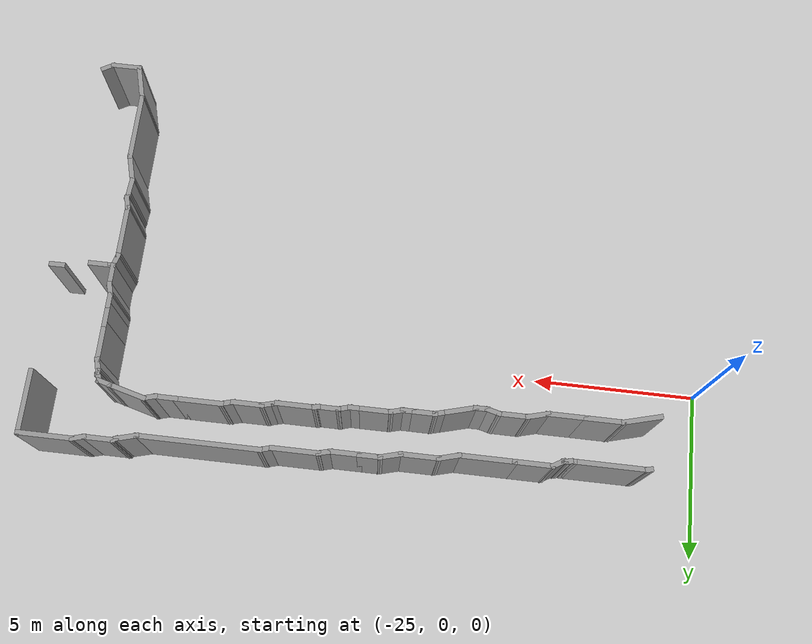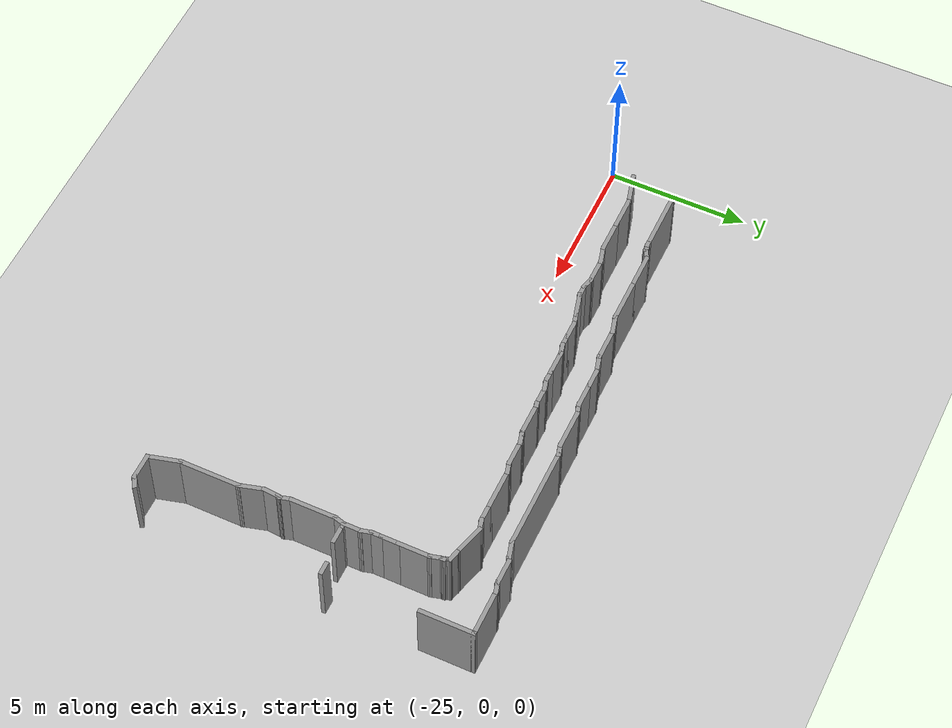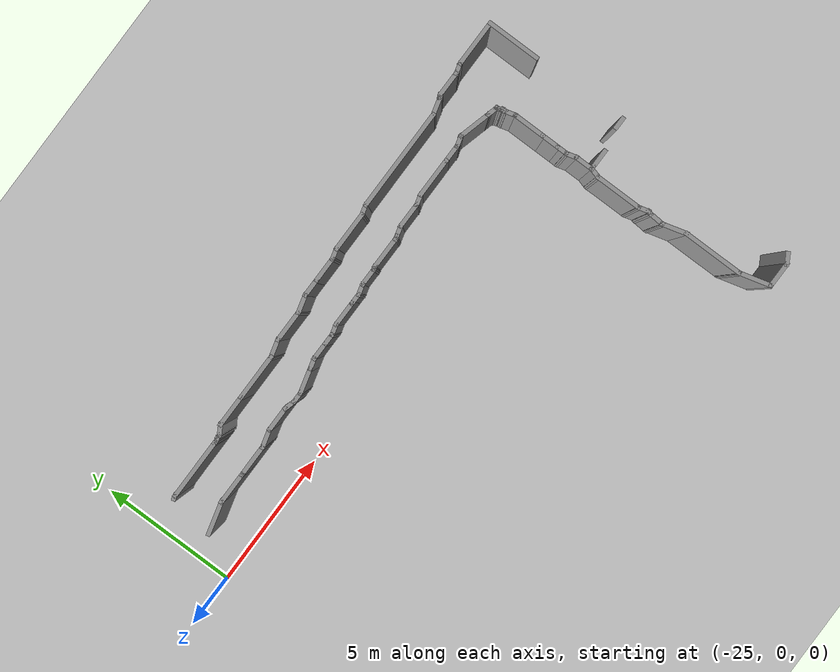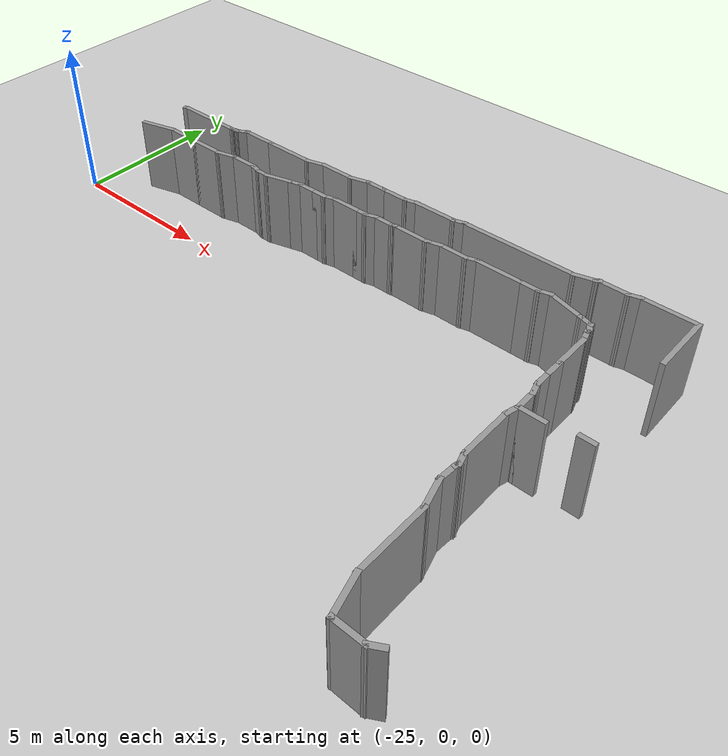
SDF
<sdf version="1.7">
 <world name="default">
  <model name="ground_plane">
   <static>1</static>
   <link name="link">
    <collision name="collision">
     <geometry><plane><normal>0 0 1</normal><size>100 100</size></plane></geometry>
     <surface>
      <contact><collide_bitmask>65535</collide_bitmask></contact>
      <friction><ode><mu>100</mu><mu2>50</mu2></ode></friction>
     </surface>
    </collision>
    <visual name="visual">
     <cast_shadows>0</cast_shadows>
     <geometry><plane><normal>0 0 1</normal><size>100 100</size></plane></geometry>
     <material>
      <script><uri>file://media/materials/scripts/gazebo.material</uri><name>Gazebo/Grey</name></script>
     </material>
    </visual>
   </link>
  </model>
  <model name="robovisor_env">
   <pose>-13 -0.201839 0 0 0 3.14</pose>
   <link name="Wall_106">
    <collision name="Wall_106_Collision">
     <geometry><box><size>2 0.15 2.5</size></box></geometry>
     <pose>0 0 1.25 0 -0 0</pose>
    </collision>
    <visual name="Wall_106_Visual">
     <pose>0 0 1.25 0 -0 0</pose>
     <geometry><box><size>2 0.15 2.5</size></box></geometry>
     <material>
      <script><uri>file://media/materials/scripts/gazebo.material</uri><name>Gazebo/Grey</name></script>
      <ambient>1 1 1 1</ambient>
     </material>
     <meta><layer>0</layer></meta>
    </visual>
    <pose>-8.11898 -3.16559 0 0 -0 -1.5708</pose>
   </link>
   <link name="Wall_107">
    <collision name="Wall_107_Collision">
     <geometry><box><size>1.75 0.15 2.5</size></box></geometry>
     <pose>0 0 1.25 0 -0 0</pose>
    </collision>
    <visual name="Wall_107_Visual">
     <pose>0 0 1.25 0 -0 0</pose>
     <geometry><box><size>1.75 0.15 2.5</size></box></geometry>
     <material>
      <script><uri>file://media/materials/scripts/gazebo.material</uri><name>Gazebo/Grey</name></script>
      <ambient>1 1 1 1</ambient>
     </material>
     <meta><layer>0</layer></meta>
    </visual>
    <pose>-7.31898 -4.09059 0 0 -0 0</pose>
   </link>
   <link name="Wall_108">
    <collision name="Wall_108_Collision">
     <geometry><box><size>0.5 0.15 2.5</size></box></geometry>
     <pose>0 0 1.25 0 -0 0</pose>
    </collision>
    <visual name="Wall_108_Visual">
     <pose>0 0 1.25 0 -0 0</pose>
     <geometry><box><size>0.5 0.15 2.5</size></box></geometry>
     <material>
      <script><uri>file://media/materials/scripts/gazebo.material</uri><name>Gazebo/Grey</name></script>
      <ambient>1 1 1 1</ambient>
     </material>
     <meta><layer>0</layer></meta>
    </visual>
    <pose>-6.34994 -4.04529 0 0 -0 0.261799</pose>
   </link>
   <link name="Wall_109">
    <collision name="Wall_109_Collision">
     <geometry><box><size>1 0.15 2.5</size></box></geometry>
     <pose>0 0 1.25 0 -0 0</pose>
    </collision>
    <visual name="Wall_109_Visual">
     <pose>0 0 1.25 0 -0 0</pose>
     <geometry><box><size>1 0.15 2.5</size></box></geometry>
     <material>
      <script><uri>file://media/materials/scripts/gazebo.material</uri><name>Gazebo/Grey</name></script>
      <ambient>1 1 1 1</ambient>
     </material>
     <meta><layer>0</layer></meta>
    </visual>
    <pose>-5.75591 -4 0 0 -0 0</pose>
   </link>
   <link name="Wall_110">
    <collision name="Wall_110_Collision">
     <geometry><box><size>0.25 0.15 2.5</size></box></geometry>
     <pose>0 0 1.25 0 -0 0</pose>
    </collision>
    <visual name="Wall_110_Visual">
     <pose>0 0 1.25 0 -0 0</pose>
     <geometry><box><size>0.25 0.15 2.5</size></box></geometry>
     <material>
      <script><uri>file://media/materials/scripts/gazebo.material</uri><name>Gazebo/Grey</name></script>
      <ambient>1 1 1 1</ambient>
     </material>
     <meta><layer>0</layer></meta>
    </visual>
    <pose>-5.28761 -3.975 0 0 -0 0.523599</pose>
   </link>
   <link name="Wall_111">
    <collision name="Wall_111_Collision">
     <geometry><box><size>0.75 0.15 2.5</size></box></geometry>
     <pose>0 0 1.25 0 -0 0</pose>
    </collision>
    <visual name="Wall_111_Visual">
     <pose>0 0 1.25 0 -0 0</pose>
     <geometry><box><size>0.75 0.15 2.5</size></box></geometry>
     <material>
      <script><uri>file://media/materials/scripts/gazebo.material</uri><name>Gazebo/Grey</name></script>
      <ambient>1 1 1 1</ambient>
     </material>
     <meta><layer>0</layer></meta>
    </visual>
    <pose>-4.95453 -3.87236 0 0 -0 0.261799</pose>
   </link>
   <link name="Wall_112">
    <collision name="Wall_112_Collision">
     <geometry><box><size>3.75 0.15 2.5</size></box></geometry>
     <pose>0 0 1.25 0 -0 0</pose>
    </collision>
    <visual name="Wall_112_Visual">
     <pose>0 0 1.25 0 -0 0</pose>
     <geometry><box><size>3.75 0.15 2.5</size></box></geometry>
     <material>
      <script><uri>file://media/materials/scripts/gazebo.material</uri><name>Gazebo/Grey</name></script>
      <ambient>1 1 1 1</ambient>
     </material>
     <meta><layer>0</layer></meta>
    </visual>
    <pose>-2.86475 -3.79471 0 0 -0 0</pose>
   </link>
   <link name="Wall_113">
    <collision name="Wall_113_Collision">
     <geometry><box><size>0.5 0.15 2.5</size></box></geometry>
     <pose>0 0 1.25 0 -0 0</pose>
    </collision>
    <visual name="Wall_113_Visual">
     <pose>0 0 1.25 0 -0 0</pose>
     <geometry><box><size>0.5 0.15 2.5</size></box></geometry>
     <material>
      <script><uri>file://media/materials/scripts/gazebo.material</uri><name>Gazebo/Grey</name></script>
      <ambient>1 1 1 1</ambient>
     </material>
     <meta><layer>0</layer></meta>
    </visual>
    <pose>-0.895711 -3.74942 0 0 -0 0.261799</pose>
   </link>
   <link name="Wall_114">
    <collision name="Wall_114_Collision">
     <geometry><box><size>1.5 0.15 2.5</size></box></geometry>
     <pose>0 0 1.25 0 -0 0</pose>
    </collision>
    <visual name="Wall_114_Visual">
     <pose>0 0 1.25 0 -0 0</pose>
     <geometry><box><size>1.5 0.15 2.5</size></box></geometry>
     <material>
      <script><uri>file://media/materials/scripts/gazebo.material</uri><name>Gazebo/Grey</name></script>
      <ambient>1 1 1 1</ambient>
     </material>
     <meta><layer>0</layer></meta>
    </visual>
    <pose>-0.051674 -3.70412 0 0 -0 0</pose>
   </link>
   <link name="Wall_115">
    <collision name="Wall_115_Collision">
     <geometry><box><size>0.5 0.15 2.5</size></box></geometry>
     <pose>0 0 1.25 0 -0 0</pose>
    </collision>
    <visual name="Wall_115_Visual">
     <pose>0 0 1.25 0 -0 0</pose>
     <geometry><box><size>0.5 0.15 2.5</size></box></geometry>
     <material>
      <script><uri>file://media/materials/scripts/gazebo.material</uri><name>Gazebo/Grey</name></script>
      <ambient>1 1 1 1</ambient>
     </material>
     <meta><layer>0</layer></meta>
    </visual>
    <pose>0.792363 -3.65883 0 0 -0 0.261799</pose>
   </link>
   <link name="Wall_116">
    <collision name="Wall_116_Collision">
     <geometry><box><size>1 0.15 2.5</size></box></geometry>
     <pose>0 0 1.25 0 -0 0</pose>
    </collision>
    <visual name="Wall_116_Visual">
     <pose>0 0 1.25 0 -0 0</pose>
     <geometry><box><size>1 0.15 2.5</size></box></geometry>
     <material>
      <script><uri>file://media/materials/scripts/gazebo.material</uri><name>Gazebo/Grey</name></script>
      <ambient>1 1 1 1</ambient>
     </material>
     <meta><layer>0</layer></meta>
    </visual>
    <pose>1.3864 -3.61354 0 0 -0 0</pose>
   </link>
   <link name="Wall_117">
    <collision name="Wall_117_Collision">
     <geometry><box><size>0.75 0.15 2.5</size></box></geometry>
     <pose>0 0 1.25 0 -0 0</pose>
    </collision>
    <visual name="Wall_117_Visual">
     <pose>0 0 1.25 0 -0 0</pose>
     <geometry><box><size>0.75 0.15 2.5</size></box></geometry>
     <material>
      <script><uri>file://media/materials/scripts/gazebo.material</uri><name>Gazebo/Grey</name></script>
      <ambient>1 1 1 1</ambient>
     </material>
     <meta><layer>0</layer></meta>
    </visual>
    <pose>2.1114 -3.61354 0 0 -0 0</pose>
   </link>
   <link name="Wall_118">
    <collision name="Wall_118_Collision">
     <geometry><box><size>0.75 0.15 2.5</size></box></geometry>
     <pose>0 0 1.25 0 -0 0</pose>
    </collision>
    <visual name="Wall_118_Visual">
     <pose>0 0 1.25 0 -0 0</pose>
     <geometry><box><size>0.75 0.15 2.5</size></box></geometry>
     <material>
      <script><uri>file://media/materials/scripts/gazebo.material</uri><name>Gazebo/Grey</name></script>
      <ambient>1 1 1 1</ambient>
     </material>
     <meta><layer>0</layer></meta>
    </visual>
    <pose>2.70118 -3.53589 0 0 -0 0.261799</pose>
   </link>
   <link name="Wall_119">
    <collision name="Wall_119_Collision">
     <geometry><box><size>1.25 0.15 2.5</size></box></geometry>
     <pose>0 0 1.25 0 -0 0</pose>
    </collision>
    <visual name="Wall_119_Visual">
     <pose>0 0 1.25 0 -0 0</pose>
     <geometry><box><size>1.25 0.15 2.5</size></box></geometry>
     <material>
      <script><uri>file://media/materials/scripts/gazebo.material</uri><name>Gazebo/Grey</name></script>
      <ambient>1 1 1 1</ambient>
     </material>
     <meta><layer>0</layer></meta>
    </visual>
    <pose>3.54096 -3.45824 0 0 -0 0</pose>
   </link>
   <link name="Wall_120">
    <collision name="Wall_120_Collision">
     <geometry><box><size>0.75 0.15 2.5</size></box></geometry>
     <pose>0 0 1.25 0 -0 0</pose>
    </collision>
    <visual name="Wall_120_Visual">
     <pose>0 0 1.25 0 -0 0</pose>
     <geometry><box><size>0.75 0.15 2.5</size></box></geometry>
     <material>
      <script><uri>file://media/materials/scripts/gazebo.material</uri><name>Gazebo/Grey</name></script>
      <ambient>1 1 1 1</ambient>
     </material>
     <meta><layer>0</layer></meta>
    </visual>
    <pose>4.38073 -3.3806 0 0 -0 0.261799</pose>
   </link>
   <link name="Wall_121">
    <collision name="Wall_121_Collision">
     <geometry><box><size>1.75 0.15 2.5</size></box></geometry>
     <pose>0 0 1.25 0 -0 0</pose>
    </collision>
    <visual name="Wall_121_Visual">
     <pose>0 0 1.25 0 -0 0</pose>
     <geometry><box><size>1.75 0.15 2.5</size></box></geometry>
     <material>
      <script><uri>file://media/materials/scripts/gazebo.material</uri><name>Gazebo/Grey</name></script>
      <ambient>1 1 1 1</ambient>
     </material>
     <meta><layer>0</layer></meta>
    </visual>
    <pose>5.47051 -3.30295 0 0 -0 0</pose>
   </link>
   <link name="Wall_123">
    <collision name="Wall_123_Collision">
     <geometry><box><size>0.75 0.15 2.5</size></box></geometry>
     <pose>0 0 1.25 0 -0 0</pose>
    </collision>
    <visual name="Wall_123_Visual">
     <pose>0 0 1.25 0 -0 0</pose>
     <geometry><box><size>0.75 0.15 2.5</size></box></geometry>
     <material>
      <script><uri>file://media/materials/scripts/gazebo.material</uri><name>Gazebo/Grey</name></script>
      <ambient>1 1 1 1</ambient>
     </material>
     <meta><layer>0</layer></meta>
    </visual>
    <pose>-6.32777 1.01254 0 0 -0 -1.5708</pose>
   </link>
   <link name="Wall_124">
    <collision name="Wall_124_Collision">
     <geometry><box><size>0.5 0.15 2.5</size></box></geometry>
     <pose>0 0 1.25 0 -0 0</pose>
    </collision>
    <visual name="Wall_124_Visual">
     <pose>0 0 1.25 0 -0 0</pose>
     <geometry><box><size>0.5 0.15 2.5</size></box></geometry>
     <material>
      <script><uri>file://media/materials/scripts/gazebo.material</uri><name>Gazebo/Grey</name></script>
      <ambient>1 1 1 1</ambient>
     </material>
     <meta><layer>0</layer></meta>
    </visual>
    <pose>-6.28248 0.543504 0 0 -0 -1.309</pose>
   </link>
   <link name="Wall_125">
    <collision name="Wall_125_Collision">
     <geometry><box><size>0.5 0.15 2.5</size></box></geometry>
     <pose>0 0 1.25 0 -0 0</pose>
    </collision>
    <visual name="Wall_125_Visual">
     <pose>0 0 1.25 0 -0 0</pose>
     <geometry><box><size>0.5 0.15 2.5</size></box></geometry>
     <material>
      <script><uri>file://media/materials/scripts/gazebo.material</uri><name>Gazebo/Grey</name></script>
      <ambient>1 1 1 1</ambient>
     </material>
     <meta><layer>0</layer></meta>
    </visual>
    <pose>-6.23718 0.199467 0 0 -0 -1.5708</pose>
   </link>
   <link name="Wall_126">
    <collision name="Wall_126_Collision">
     <geometry><box><size>0.75 0.15 2.5</size></box></geometry>
     <pose>0 0 1.25 0 -0 0</pose>
    </collision>
    <visual name="Wall_126_Visual">
     <pose>0 0 1.25 0 -0 0</pose>
     <geometry><box><size>0.75 0.15 2.5</size></box></geometry>
     <material>
      <script><uri>file://media/materials/scripts/gazebo.material</uri><name>Gazebo/Grey</name></script>
      <ambient>1 1 1 1</ambient>
     </material>
     <meta><layer>0</layer></meta>
    </visual>
    <pose>-6.23718 -0.275533 0 0 -0 -1.5708</pose>
   </link>
   <link name="Wall_127">
    <collision name="Wall_127_Collision">
     <geometry><box><size>1.25 0.15 2.5</size></box></geometry>
     <pose>0 0 1.25 0 -0 0</pose>
    </collision>
    <visual name="Wall_127_Visual">
     <pose>0 0 1.25 0 -0 0</pose>
     <geometry><box><size>1.25 0.15 2.5</size></box></geometry>
     <material>
      <script><uri>file://media/materials/scripts/gazebo.material</uri><name>Gazebo/Grey</name></script>
      <ambient>1 1 1 1</ambient>
     </material>
     <meta><layer>0</layer></meta>
    </visual>
    <pose>-6.23718 -1.12553 0 0 -0 -1.5708</pose>
   </link>
   <link name="Wall_128">
    <collision name="Wall_128_Collision">
     <geometry><box><size>0.5 0.15 2.5</size></box></geometry>
     <pose>0 0 1.25 0 -0 0</pose>
    </collision>
    <visual name="Wall_128_Visual">
     <pose>0 0 1.25 0 -0 0</pose>
     <geometry><box><size>0.5 0.15 2.5</size></box></geometry>
     <material>
      <script><uri>file://media/materials/scripts/gazebo.material</uri><name>Gazebo/Grey</name></script>
      <ambient>1 1 1 1</ambient>
     </material>
     <meta><layer>0</layer></meta>
    </visual>
    <pose>-6.19189 -1.84457 0 0 -0 -1.309</pose>
   </link>
   <link name="Wall_129">
    <collision name="Wall_129_Collision">
     <geometry><box><size>0.25 0.15 2.5</size></box></geometry>
     <pose>0 0 1.25 0 -0 0</pose>
    </collision>
    <visual name="Wall_129_Visual">
     <pose>0 0 1.25 0 -0 0</pose>
     <geometry><box><size>0.25 0.15 2.5</size></box></geometry>
     <material>
      <script><uri>file://media/materials/scripts/gazebo.material</uri><name>Gazebo/Grey</name></script>
      <ambient>1 1 1 1</ambient>
     </material>
     <meta><layer>0</layer></meta>
    </visual>
    <pose>-6.1466 -2.06361 0 0 -0 -1.5708</pose>
   </link>
   <link name="Wall_130">
    <collision name="Wall_130_Collision">
     <geometry><box><size>0.25 0.15 2.5</size></box></geometry>
     <pose>0 0 1.25 0 -0 0</pose>
    </collision>
    <visual name="Wall_130_Visual">
     <pose>0 0 1.25 0 -0 0</pose>
     <geometry><box><size>0.25 0.15 2.5</size></box></geometry>
     <material>
      <script><uri>file://media/materials/scripts/gazebo.material</uri><name>Gazebo/Grey</name></script>
      <ambient>1 1 1 1</ambient>
     </material>
     <meta><layer>0</layer></meta>
    </visual>
    <pose>-6.1216 -2.15691 0 0 -0 -1.0472</pose>
   </link>
   <link name="Wall_131">
    <collision name="Wall_131_Collision">
     <geometry><box><size>0.25 0.15 2.5</size></box></geometry>
     <pose>0 0 1.25 0 -0 0</pose>
    </collision>
    <visual name="Wall_131_Visual">
     <pose>0 0 1.25 0 -0 0</pose>
     <geometry><box><size>0.25 0.15 2.5</size></box></geometry>
     <material>
      <script><uri>file://media/materials/scripts/gazebo.material</uri><name>Gazebo/Grey</name></script>
      <ambient>1 1 1 1</ambient>
     </material>
     <meta><layer>0</layer></meta>
    </visual>
    <pose>-6.08366 -2.24851 0 0 -0 -1.309</pose>
   </link>
   <link name="Wall_132">
    <collision name="Wall_132_Collision">
     <geometry><box><size>0.15 0.15 2.5</size></box></geometry>
     <pose>0 0 1.25 0 -0 0</pose>
    </collision>
    <visual name="Wall_132_Visual">
     <pose>0 0 1.25 0 -0 0</pose>
     <geometry><box><size>0.15 0.15 2.5</size></box></geometry>
     <material>
      <script><uri>file://media/materials/scripts/gazebo.material</uri><name>Gazebo/Grey</name></script>
      <ambient>1 1 1 1</ambient>
     </material>
     <meta><layer>0</layer></meta>
    </visual>
    <pose>-6.07071 -2.2968 0 0 -0 0</pose>
   </link>
   <link name="Wall_133">
    <collision name="Wall_133_Collision">
     <geometry><box><size>0.5 0.15 2.5</size></box></geometry>
     <pose>0 0 1.25 0 -0 0</pose>
    </collision>
    <visual name="Wall_133_Visual">
     <pose>0 0 1.25 0 -0 0</pose>
     <geometry><box><size>0.5 0.15 2.5</size></box></geometry>
     <material>
      <script><uri>file://media/materials/scripts/gazebo.material</uri><name>Gazebo/Grey</name></script>
      <ambient>1 1 1 1</ambient>
     </material>
     <meta><layer>0</layer></meta>
    </visual>
    <pose>-5.90168 -2.3421 0 0 -0 -0.261799</pose>
   </link>
   <link name="Wall_134">
    <collision name="Wall_134_Collision">
     <geometry><box><size>0.15 0.15 2.5</size></box></geometry>
     <pose>0 0 1.25 0 -0 0</pose>
    </collision>
    <visual name="Wall_134_Visual">
     <pose>0 0 1.25 0 -0 0</pose>
     <geometry><box><size>0.15 0.15 2.5</size></box></geometry>
     <material>
      <script><uri>file://media/materials/scripts/gazebo.material</uri><name>Gazebo/Grey</name></script>
      <ambient>1 1 1 1</ambient>
     </material>
     <meta><layer>0</layer></meta>
    </visual>
    <pose>-5.73264 -2.38739 0 0 -0 0</pose>
   </link>
   <link name="Wall_135">
    <collision name="Wall_135_Collision">
     <geometry><box><size>1.25 0.15 2.5</size></box></geometry>
     <pose>0 0 1.25 0 -0 0</pose>
    </collision>
    <visual name="Wall_135_Visual">
     <pose>0 0 1.25 0 -0 0</pose>
     <geometry><box><size>1.25 0.15 2.5</size></box></geometry>
     <material>
      <script><uri>file://media/materials/scripts/gazebo.material</uri><name>Gazebo/Grey</name></script>
      <ambient>1 1 1 1</ambient>
     </material>
     <meta><layer>0</layer></meta>
    </visual>
    <pose>-5.20138 -2.52974 0 0 -0 -0.261799</pose>
   </link>
   <link name="Wall_136">
    <collision name="Wall_136_Collision">
     <geometry><box><size>0.5 0.15 2.5</size></box></geometry>
     <pose>0 0 1.25 0 -0 0</pose>
    </collision>
    <visual name="Wall_136_Visual">
     <pose>0 0 1.25 0 -0 0</pose>
     <geometry><box><size>0.5 0.15 2.5</size></box></geometry>
     <material>
      <script><uri>file://media/materials/scripts/gazebo.material</uri><name>Gazebo/Grey</name></script>
      <ambient>1 1 1 1</ambient>
     </material>
     <meta><layer>0</layer></meta>
    </visual>
    <pose>-4.50109 -2.6268 0 0 -0 0.261799</pose>
   </link>
   <link name="Wall_137">
    <collision name="Wall_137_Collision">
     <geometry><box><size>0.75 0.15 2.5</size></box></geometry>
     <pose>0 0 1.25 0 -0 0</pose>
    </collision>
    <visual name="Wall_137_Visual">
     <pose>0 0 1.25 0 -0 0</pose>
     <geometry><box><size>0.75 0.15 2.5</size></box></geometry>
     <material>
      <script><uri>file://media/materials/scripts/gazebo.material</uri><name>Gazebo/Grey</name></script>
      <ambient>1 1 1 1</ambient>
     </material>
     <meta><layer>0</layer></meta>
    </visual>
    <pose>-4.03205 -2.5815 0 0 -0 0</pose>
   </link>
   <link name="Wall_138">
    <collision name="Wall_138_Collision">
     <geometry><box><size>1.5 0.15 2.5</size></box></geometry>
     <pose>0 0 1.25 0 -0 0</pose>
    </collision>
    <visual name="Wall_138_Visual">
     <pose>0 0 1.25 0 -0 0</pose>
     <geometry><box><size>1.5 0.15 2.5</size></box></geometry>
     <material>
      <script><uri>file://media/materials/scripts/gazebo.material</uri><name>Gazebo/Grey</name></script>
      <ambient>1 1 1 1</ambient>
     </material>
     <meta><layer>0</layer></meta>
    </visual>
    <pose>-3.05705 -2.5815 0 0 -0 0</pose>
   </link>
   <link name="Wall_139">
    <collision name="Wall_139_Collision">
     <geometry><box><size>0.5 0.15 2.5</size></box></geometry>
     <pose>0 0 1.25 0 -0 0</pose>
    </collision>
    <visual name="Wall_139_Visual">
     <pose>0 0 1.25 0 -0 0</pose>
     <geometry><box><size>0.5 0.15 2.5</size></box></geometry>
     <material>
      <script><uri>file://media/materials/scripts/gazebo.material</uri><name>Gazebo/Grey</name></script>
      <ambient>1 1 1 1</ambient>
     </material>
     <meta><layer>0</layer></meta>
    </visual>
    <pose>-2.21301 -2.53621 0 0 -0 0.261799</pose>
   </link>
   <link name="Wall_140">
    <collision name="Wall_140_Collision">
     <geometry><box><size>1 0.15 2.5</size></box></geometry>
     <pose>0 0 1.25 0 -0 0</pose>
    </collision>
    <visual name="Wall_140_Visual">
     <pose>0 0 1.25 0 -0 0</pose>
     <geometry><box><size>1 0.15 2.5</size></box></geometry>
     <material>
      <script><uri>file://media/materials/scripts/gazebo.material</uri><name>Gazebo/Grey</name></script>
      <ambient>1 1 1 1</ambient>
     </material>
     <meta><layer>0</layer></meta>
    </visual>
    <pose>-1.61898 -2.49092 0 0 -0 0</pose>
   </link>
   <link name="Wall_141">
    <collision name="Wall_141_Collision">
     <geometry><box><size>0.5 0.15 2.5</size></box></geometry>
     <pose>0 0 1.25 0 -0 0</pose>
    </collision>
    <visual name="Wall_141_Visual">
     <pose>0 0 1.25 0 -0 0</pose>
     <geometry><box><size>0.5 0.15 2.5</size></box></geometry>
     <material>
      <script><uri>file://media/materials/scripts/gazebo.material</uri><name>Gazebo/Grey</name></script>
      <ambient>1 1 1 1</ambient>
     </material>
     <meta><layer>0</layer></meta>
    </visual>
    <pose>-1.02494 -2.44562 0 0 -0 0.261799</pose>
   </link>
   <link name="Wall_142">
    <collision name="Wall_142_Collision">
     <geometry><box><size>0.25 0.15 2.5</size></box></geometry>
     <pose>0 0 1.25 0 -0 0</pose>
    </collision>
    <visual name="Wall_142_Visual">
     <pose>0 0 1.25 0 -0 0</pose>
     <geometry><box><size>0.25 0.15 2.5</size></box></geometry>
     <material>
      <script><uri>file://media/materials/scripts/gazebo.material</uri><name>Gazebo/Grey</name></script>
      <ambient>1 1 1 1</ambient>
     </material>
     <meta><layer>0</layer></meta>
    </visual>
    <pose>-0.807605 -2.38739 0 0 -0 0.261799</pose>
   </link>
   <link name="Wall_143">
    <collision name="Wall_143_Collision">
     <geometry><box><size>1.25 0.15 2.5</size></box></geometry>
     <pose>0 0 1.25 0 -0 0</pose>
    </collision>
    <visual name="Wall_143_Visual">
     <pose>0 0 1.25 0 -0 0</pose>
     <geometry><box><size>1.25 0.15 2.5</size></box></geometry>
     <material>
      <script><uri>file://media/materials/scripts/gazebo.material</uri><name>Gazebo/Grey</name></script>
      <ambient>1 1 1 1</ambient>
     </material>
     <meta><layer>0</layer></meta>
    </visual>
    <pose>-0.209308 -2.37445 0 0 -0 0</pose>
   </link>
   <link name="Wall_144">
    <collision name="Wall_144_Collision">
     <geometry><box><size>0.25 0.15 2.5</size></box></geometry>
     <pose>0 0 1.25 0 -0 0</pose>
    </collision>
    <visual name="Wall_144_Visual">
     <pose>0 0 1.25 0 -0 0</pose>
     <geometry><box><size>0.25 0.15 2.5</size></box></geometry>
     <material>
      <script><uri>file://media/materials/scripts/gazebo.material</uri><name>Gazebo/Grey</name></script>
      <ambient>1 1 1 1</ambient>
     </material>
     <meta><layer>0</layer></meta>
    </visual>
    <pose>0.388988 -2.36151 0 0 -0 0.261799</pose>
   </link>
   <link name="Wall_145">
    <collision name="Wall_145_Collision">
     <geometry><box><size>0.75 0.15 2.5</size></box></geometry>
     <pose>0 0 1.25 0 -0 0</pose>
    </collision>
    <visual name="Wall_145_Visual">
     <pose>0 0 1.25 0 -0 0</pose>
     <geometry><box><size>0.75 0.15 2.5</size></box></geometry>
     <material>
      <script><uri>file://media/materials/scripts/gazebo.material</uri><name>Gazebo/Grey</name></script>
      <ambient>1 1 1 1</ambient>
     </material>
     <meta><layer>0</layer></meta>
    </visual>
    <pose>0.737285 -2.34857 0 0 -0 0</pose>
   </link>
   <link name="Wall_146">
    <collision name="Wall_146_Collision">
     <geometry><box><size>0.5 0.15 2.5</size></box></geometry>
     <pose>0 0 1.25 0 -0 0</pose>
    </collision>
    <visual name="Wall_146_Visual">
     <pose>0 0 1.25 0 -0 0</pose>
     <geometry><box><size>0.5 0.15 2.5</size></box></geometry>
     <material>
      <script><uri>file://media/materials/scripts/gazebo.material</uri><name>Gazebo/Grey</name></script>
      <ambient>1 1 1 1</ambient>
     </material>
     <meta><layer>0</layer></meta>
    </visual>
    <pose>1.20632 -2.30327 0 0 -0 0.261799</pose>
   </link>
   <link name="Wall_147">
    <collision name="Wall_147_Collision">
     <geometry><box><size>0.5 0.15 2.5</size></box></geometry>
     <pose>0 0 1.25 0 -0 0</pose>
    </collision>
    <visual name="Wall_147_Visual">
     <pose>0 0 1.25 0 -0 0</pose>
     <geometry><box><size>0.5 0.15 2.5</size></box></geometry>
     <material>
      <script><uri>file://media/materials/scripts/gazebo.material</uri><name>Gazebo/Grey</name></script>
      <ambient>1 1 1 1</ambient>
     </material>
     <meta><layer>0</layer></meta>
    </visual>
    <pose>1.55036 -2.25798 0 0 -0 0</pose>
   </link>
   <link name="Wall_148">
    <collision name="Wall_148_Collision">
     <geometry><box><size>1 0.15 2.5</size></box></geometry>
     <pose>0 0 1.25 0 -0 0</pose>
    </collision>
    <visual name="Wall_148_Visual">
     <pose>0 0 1.25 0 -0 0</pose>
     <geometry><box><size>1 0.15 2.5</size></box></geometry>
     <material>
      <script><uri>file://media/materials/scripts/gazebo.material</uri><name>Gazebo/Grey</name></script>
      <ambient>1 1 1 1</ambient>
     </material>
     <meta><layer>0</layer></meta>
    </visual>
    <pose>2.15036 -2.25798 0 0 -0 0</pose>
   </link>
   <link name="Wall_149">
    <collision name="Wall_149_Collision">
     <geometry><box><size>0.5 0.15 2.5</size></box></geometry>
     <pose>0 0 1.25 0 -0 0</pose>
    </collision>
    <visual name="Wall_149_Visual">
     <pose>0 0 1.25 0 -0 0</pose>
     <geometry><box><size>0.5 0.15 2.5</size></box></geometry>
     <material>
      <script><uri>file://media/materials/scripts/gazebo.material</uri><name>Gazebo/Grey</name></script>
      <ambient>1 1 1 1</ambient>
     </material>
     <meta><layer>0</layer></meta>
    </visual>
    <pose>2.74439 -2.21269 0 0 -0 0.261799</pose>
   </link>
   <link name="Wall_150">
    <collision name="Wall_150_Collision">
     <geometry><box><size>0.5 0.15 2.5</size></box></geometry>
     <pose>0 0 1.25 0 -0 0</pose>
    </collision>
    <visual name="Wall_150_Visual">
     <pose>0 0 1.25 0 -0 0</pose>
     <geometry><box><size>0.5 0.15 2.5</size></box></geometry>
     <material>
      <script><uri>file://media/materials/scripts/gazebo.material</uri><name>Gazebo/Grey</name></script>
      <ambient>1 1 1 1</ambient>
     </material>
     <meta><layer>0</layer></meta>
    </visual>
    <pose>3.08843 -2.16739 0 0 -0 0</pose>
   </link>
   <link name="Wall_151">
    <collision name="Wall_151_Collision">
     <geometry><box><size>0.75 0.15 2.5</size></box></geometry>
     <pose>0 0 1.25 0 -0 0</pose>
    </collision>
    <visual name="Wall_151_Visual">
     <pose>0 0 1.25 0 -0 0</pose>
     <geometry><box><size>0.75 0.15 2.5</size></box></geometry>
     <material>
      <script><uri>file://media/materials/scripts/gazebo.material</uri><name>Gazebo/Grey</name></script>
      <ambient>1 1 1 1</ambient>
     </material>
     <meta><layer>0</layer></meta>
    </visual>
    <pose>3.56343 -2.16739 0 0 -0 0</pose>
   </link>
   <link name="Wall_152">
    <collision name="Wall_152_Collision">
     <geometry><box><size>0.5 0.15 2.5</size></box></geometry>
     <pose>0 0 1.25 0 -0 0</pose>
    </collision>
    <visual name="Wall_152_Visual">
     <pose>0 0 1.25 0 -0 0</pose>
     <geometry><box><size>0.5 0.15 2.5</size></box></geometry>
     <material>
      <script><uri>file://media/materials/scripts/gazebo.material</uri><name>Gazebo/Grey</name></script>
      <ambient>1 1 1 1</ambient>
     </material>
     <meta><layer>0</layer></meta>
    </visual>
    <pose>4.03247 -2.1221 0 0 -0 0.261799</pose>
   </link>
   <link name="Wall_153">
    <collision name="Wall_153_Collision">
     <geometry><box><size>1 0.15 2.5</size></box></geometry>
     <pose>0 0 1.25 0 -0 0</pose>
    </collision>
    <visual name="Wall_153_Visual">
     <pose>0 0 1.25 0 -0 0</pose>
     <geometry><box><size>1 0.15 2.5</size></box></geometry>
     <material>
      <script><uri>file://media/materials/scripts/gazebo.material</uri><name>Gazebo/Grey</name></script>
      <ambient>1 1 1 1</ambient>
     </material>
     <meta><layer>0</layer></meta>
    </visual>
    <pose>4.61203 -1.96681 0 0 -0 0.261799</pose>
   </link>
   <link name="Wall_154">
    <collision name="Wall_154_Collision">
     <geometry><box><size>0.5 0.15 2.5</size></box></geometry>
     <pose>0 0 1.25 0 -0 0</pose>
    </collision>
    <visual name="Wall_154_Visual">
     <pose>0 0 1.25 0 -0 0</pose>
     <geometry><box><size>0.5 0.15 2.5</size></box></geometry>
     <material>
      <script><uri>file://media/materials/scripts/gazebo.material</uri><name>Gazebo/Grey</name></script>
      <ambient>1 1 1 1</ambient>
     </material>
     <meta><layer>0</layer></meta>
    </visual>
    <pose>5.19754 -1.85681 0 0 -0 0</pose>
   </link>
   <link name="Wall_155">
    <collision name="Wall_155_Collision">
     <geometry><box><size>0.5 0.15 2.5</size></box></geometry>
     <pose>0 0 1.25 0 -0 0</pose>
    </collision>
    <visual name="Wall_155_Visual">
     <pose>0 0 1.25 0 -0 0</pose>
     <geometry><box><size>0.5 0.15 2.5</size></box></geometry>
     <material>
      <script><uri>file://media/materials/scripts/gazebo.material</uri><name>Gazebo/Grey</name></script>
      <ambient>1 1 1 1</ambient>
     </material>
     <meta><layer>0</layer></meta>
    </visual>
    <pose>5.54158 -1.9021 0 0 -0 -0.261799</pose>
   </link>
   <link name="Wall_156">
    <collision name="Wall_156_Collision">
     <geometry><box><size>1 0.15 2.5</size></box></geometry>
     <pose>0 0 1.25 0 -0 0</pose>
    </collision>
    <visual name="Wall_156_Visual">
     <pose>0 0 1.25 0 -0 0</pose>
     <geometry><box><size>1 0.15 2.5</size></box></geometry>
     <material>
      <script><uri>file://media/materials/scripts/gazebo.material</uri><name>Gazebo/Grey</name></script>
      <ambient>1 1 1 1</ambient>
     </material>
     <meta><layer>0</layer></meta>
    </visual>
    <pose>6.13562 -1.9474 0 0 -0 0</pose>
   </link>
   <link name="Wall_157">
    <collision name="Wall_157_Collision">
     <geometry><box><size>0.75 0.15 2.5</size></box></geometry>
     <pose>0 0 1.25 0 -0 0</pose>
    </collision>
    <visual name="Wall_157_Visual">
     <pose>0 0 1.25 0 -0 0</pose>
     <geometry><box><size>0.75 0.15 2.5</size></box></geometry>
     <material>
      <script><uri>file://media/materials/scripts/gazebo.material</uri><name>Gazebo/Grey</name></script>
      <ambient>1 1 1 1</ambient>
     </material>
     <meta><layer>0</layer></meta>
    </visual>
    <pose>6.8504 -1.86975 0 0 -0 0.261799</pose>
   </link>
   <link name="Wall_158">
    <collision name="Wall_158_Collision">
     <geometry><box><size>1.25 0.15 2.5</size></box></geometry>
     <pose>0 0 1.25 0 -0 0</pose>
    </collision>
    <visual name="Wall_158_Visual">
     <pose>0 0 1.25 0 -0 0</pose>
     <geometry><box><size>1.25 0.15 2.5</size></box></geometry>
     <material>
      <script><uri>file://media/materials/scripts/gazebo.material</uri><name>Gazebo/Grey</name></script>
      <ambient>1 1 1 1</ambient>
     </material>
     <meta><layer>0</layer></meta>
    </visual>
    <pose>7.69017 -1.79211 0 0 -0 0</pose>
   </link>
   <link name="Wall_159">
    <collision name="Wall_159_Collision">
     <geometry><box><size>1.25 0.15 2.5</size></box></geometry>
     <pose>0 0 1.25 0 -0 0</pose>
    </collision>
    <visual name="Wall_159_Visual">
     <pose>0 0 1.25 0 -0 0</pose>
     <geometry><box><size>1.25 0.15 2.5</size></box></geometry>
     <material>
      <script><uri>file://media/materials/scripts/gazebo.material</uri><name>Gazebo/Grey</name></script>
      <ambient>1 1 1 1</ambient>
     </material>
     <meta><layer>0</layer></meta>
    </visual>
    <pose>8.79017 -1.79211 0 0 -0 0</pose>
   </link>
   <link name="Wall_160">
    <collision name="Wall_160_Collision">
     <geometry><box><size>1.25 0.15 2.5</size></box></geometry>
     <pose>0 0 1.25 0 -0 0</pose>
    </collision>
    <visual name="Wall_160_Visual">
     <pose>0 0 1.25 0 -0 0</pose>
     <geometry><box><size>1.25 0.15 2.5</size></box></geometry>
     <material>
      <script><uri>file://media/materials/scripts/gazebo.material</uri><name>Gazebo/Grey</name></script>
      <ambient>1 1 1 1</ambient>
     </material>
     <meta><layer>0</layer></meta>
    </visual>
    <pose>9.87143 -1.64976 0 0 -0 0.261799</pose>
   </link>
   <link name="Wall_301">
    <collision name="Wall_301_Collision">
     <geometry><box><size>1.25 0.15 2.5</size></box></geometry>
     <pose>0 0 1.25 0 -0 0</pose>
    </collision>
    <visual name="Wall_301_Visual">
     <pose>0 0 1.25 0 -0 0</pose>
     <geometry><box><size>1.25 0.15 2.5</size></box></geometry>
     <material>
      <script><uri>file://media/materials/scripts/gazebo.material</uri><name>Gazebo/Grey</name></script>
      <ambient>1 1 1 1</ambient>
     </material>
     <meta><layer>0</layer></meta>
    </visual>
    <pose>6.82051 -3.30295 0 0 -0 0</pose>
   </link>
   <link name="Wall_302">
    <collision name="Wall_302_Collision">
     <geometry><box><size>0.5 0.15 2.5</size></box></geometry>
     <pose>0 0 1.25 0 -0 0</pose>
    </collision>
    <visual name="Wall_302_Visual">
     <pose>0 0 1.25 0 -0 0</pose>
     <geometry><box><size>0.5 0.15 2.5</size></box></geometry>
     <material>
      <script><uri>file://media/materials/scripts/gazebo.material</uri><name>Gazebo/Grey</name></script>
      <ambient>1 1 1 1</ambient>
     </material>
     <meta><layer>0</layer></meta>
    </visual>
    <pose>7.52206 -3.21545 0 0 -0 0.523599</pose>
   </link>
   <link name="Wall_303">
    <collision name="Wall_303_Collision">
     <geometry><box><size>0.25 0.15 2.5</size></box></geometry>
     <pose>0 0 1.25 0 -0 0</pose>
    </collision>
    <visual name="Wall_303_Visual">
     <pose>0 0 1.25 0 -0 0</pose>
     <geometry><box><size>0.25 0.15 2.5</size></box></geometry>
     <material>
      <script><uri>file://media/materials/scripts/gazebo.material</uri><name>Gazebo/Grey</name></script>
      <ambient>1 1 1 1</ambient>
     </material>
     <meta><layer>0</layer></meta>
    </visual>
    <pose>7.72362 -3.12795 0 0 -0 0</pose>
   </link>
   <link name="Wall_304">
    <collision name="Wall_304_Collision">
     <geometry><box><size>0.25 0.15 2.5</size></box></geometry>
     <pose>0 0 1.25 0 -0 0</pose>
    </collision>
    <visual name="Wall_304_Visual">
     <pose>0 0 1.25 0 -0 0</pose>
     <geometry><box><size>0.25 0.15 2.5</size></box></geometry>
     <material>
      <script><uri>file://media/materials/scripts/gazebo.material</uri><name>Gazebo/Grey</name></script>
      <ambient>1 1 1 1</ambient>
     </material>
     <meta><layer>0</layer></meta>
    </visual>
    <pose>7.82192 -3.11501 0 0 -0 0.261799</pose>
   </link>
   <link name="Wall_305">
    <collision name="Wall_305_Collision">
     <geometry><box><size>0.25 0.15 2.5</size></box></geometry>
     <pose>0 0 1.25 0 -0 0</pose>
    </collision>
    <visual name="Wall_305_Visual">
     <pose>0 0 1.25 0 -0 0</pose>
     <geometry><box><size>0.25 0.15 2.5</size></box></geometry>
     <material>
      <script><uri>file://media/materials/scripts/gazebo.material</uri><name>Gazebo/Grey</name></script>
      <ambient>1 1 1 1</ambient>
     </material>
     <meta><layer>0</layer></meta>
    </visual>
    <pose>7.92021 -3.10207 0 0 -0 0</pose>
   </link>
   <link name="Wall_306">
    <collision name="Wall_306_Collision">
     <geometry><box><size>2.25 0.15 2.5</size></box></geometry>
     <pose>0 0 1.25 0 -0 0</pose>
    </collision>
    <visual name="Wall_306_Visual">
     <pose>0 0 1.25 0 -0 0</pose>
     <geometry><box><size>2.25 0.15 2.5</size></box></geometry>
     <material>
      <script><uri>file://media/materials/scripts/gazebo.material</uri><name>Gazebo/Grey</name></script>
      <ambient>1 1 1 1</ambient>
     </material>
     <meta><layer>0</layer></meta>
    </visual>
    <pose>9.02021 -3.10207 0 0 -0 0</pose>
   </link>
   <link name="Wall_307">
    <collision name="Wall_307_Collision">
     <geometry><box><size>0.25 0.15 2.5</size></box></geometry>
     <pose>0 0 1.25 0 -0 0</pose>
    </collision>
    <visual name="Wall_307_Visual">
     <pose>0 0 1.25 0 -0 0</pose>
     <geometry><box><size>0.25 0.15 2.5</size></box></geometry>
     <material>
      <script><uri>file://media/materials/scripts/gazebo.material</uri><name>Gazebo/Grey</name></script>
      <ambient>1 1 1 1</ambient>
     </material>
     <meta><layer>0</layer></meta>
    </visual>
    <pose>10.1185 -3.08913 0 0 -0 0.261799</pose>
   </link>
   <link name="Wall_55">
    <collision name="Wall_55_Collision">
     <geometry><box><size>0.5 0.15 2.5</size></box></geometry>
     <pose>0 0 1.25 0 -0 0</pose>
    </collision>
    <visual name="Wall_55_Visual">
     <pose>0 0 1.25 0 -0 0</pose>
     <geometry><box><size>0.5 0.15 2.5</size></box></geometry>
     <material>
      <script><uri>file://media/materials/scripts/gazebo.material</uri><name>Gazebo/Grey</name></script>
      <ambient>1 1 1 1</ambient>
     </material>
     <meta><layer>0</layer></meta>
    </visual>
    <pose>-7.77397 8.06584 0 0 -0 0.523599</pose>
   </link>
   <link name="Wall_56">
    <collision name="Wall_56_Collision">
     <geometry><box><size>1 0.15 2.5</size></box></geometry>
     <pose>0 0 1.25 0 -0 0</pose>
    </collision>
    <visual name="Wall_56_Visual">
     <pose>0 0 1.25 0 -0 0</pose>
     <geometry><box><size>1 0.15 2.5</size></box></geometry>
     <material>
      <script><uri>file://media/materials/scripts/gazebo.material</uri><name>Gazebo/Grey</name></script>
      <ambient>1 1 1 1</ambient>
     </material>
     <meta><layer>0</layer></meta>
    </visual>
    <pose>-7.19742 8.15334 0 0 -0 0</pose>
   </link>
   <link name="Wall_57">
    <collision name="Wall_57_Collision">
     <geometry><box><size>1.25 0.15 2.5</size></box></geometry>
     <pose>0 0 1.25 0 -0 0</pose>
    </collision>
    <visual name="Wall_57_Visual">
     <pose>0 0 1.25 0 -0 0</pose>
     <geometry><box><size>1.25 0.15 2.5</size></box></geometry>
     <material>
      <script><uri>file://media/materials/scripts/gazebo.material</uri><name>Gazebo/Grey</name></script>
      <ambient>1 1 1 1</ambient>
     </material>
     <meta><layer>0</layer></meta>
    </visual>
    <pose>-6.63007 7.62209 0 0 -0 -1.309</pose>
   </link>
   <link name="Wall_58">
    <collision name="Wall_58_Collision">
     <geometry><box><size>2.25 0.15 2.5</size></box></geometry>
     <pose>0 0 1.25 0 -0 0</pose>
    </collision>
    <visual name="Wall_58_Visual">
     <pose>0 0 1.25 0 -0 0</pose>
     <geometry><box><size>2.25 0.15 2.5</size></box></geometry>
     <material>
      <script><uri>file://media/materials/scripts/gazebo.material</uri><name>Gazebo/Grey</name></script>
      <ambient>1 1 1 1</ambient>
     </material>
     <meta><layer>0</layer></meta>
    </visual>
    <pose>-6.48772 6.04082 0 0 -0 -1.5708</pose>
   </link>
   <link name="Wall_59">
    <collision name="Wall_59_Collision">
     <geometry><box><size>0.987305 0.15 2.5</size></box></geometry>
     <pose>0 0 1.25 0 -0 0</pose>
    </collision>
    <visual name="Wall_59_Visual">
     <pose>0 0 1.25 0 -0 0</pose>
     <geometry><box><size>0.987305 0.15 2.5</size></box></geometry>
     <material>
      <script><uri>file://media/materials/scripts/gazebo.material</uri><name>Gazebo/Grey</name></script>
      <ambient>1 1 1 1</ambient>
     </material>
     <meta><layer>0</layer></meta>
    </visual>
    <pose>-6.37772 4.58688 0 0 -0 -1.30493</pose>
   </link>
   <link name="Wall_91">
    <collision name="Wall_91_Collision">
     <geometry><box><size>0.5 0.15 2.5</size></box></geometry>
     <pose>0 0 1.25 0 -0 0</pose>
    </collision>
    <visual name="Wall_91_Visual">
     <pose>0 0 1.25 0 -0 0</pose>
     <geometry><box><size>0.5 0.15 2.5</size></box></geometry>
     <material>
      <script><uri>file://media/materials/scripts/gazebo.material</uri><name>Gazebo/Grey</name></script>
      <ambient>1 1 1 1</ambient>
     </material>
     <meta><layer>0</layer></meta>
    </visual>
    <pose>-8.03457 1.14749 0 0 -0 0</pose>
   </link>
   <link name="Wall_93">
    <collision name="Wall_93_Collision">
     <geometry><box><size>0.75 0.15 2.5</size></box></geometry>
     <pose>0 0 1.25 0 -0 0</pose>
    </collision>
    <visual name="Wall_93_Visual">
     <pose>0 0 1.25 0 -0 0</pose>
     <geometry><box><size>0.75 0.15 2.5</size></box></geometry>
     <material>
      <script><uri>file://media/materials/scripts/gazebo.material</uri><name>Gazebo/Grey</name></script>
      <ambient>1 1 1 1</ambient>
     </material>
     <meta><layer>0</layer></meta>
    </visual>
    <pose>-6.72777 1.31254 0 0 -0 0</pose>
   </link>
   <link name="Wall_94">
    <collision name="Wall_94_Collision">
     <geometry><box><size>0.25 0.15 2.5</size></box></geometry>
     <pose>0 0 1.25 0 -0 0</pose>
    </collision>
    <visual name="Wall_94_Visual">
     <pose>0 0 1.25 0 -0 0</pose>
     <geometry><box><size>0.25 0.15 2.5</size></box></geometry>
     <material>
      <script><uri>file://media/materials/scripts/gazebo.material</uri><name>Gazebo/Grey</name></script>
      <ambient>1 1 1 1</ambient>
     </material>
     <meta><layer>0</layer></meta>
    </visual>
    <pose>-6.37777 1.31254 0 0 -0 0</pose>
   </link>
   <link name="Wall_95">
    <collision name="Wall_95_Collision">
     <geometry><box><size>0.5 0.15 2.5</size></box></geometry>
     <pose>0 0 1.25 0 -0 0</pose>
    </collision>
    <visual name="Wall_95_Visual">
     <pose>0 0 1.25 0 -0 0</pose>
     <geometry><box><size>0.5 0.15 2.5</size></box></geometry>
     <material>
      <script><uri>file://media/materials/scripts/gazebo.material</uri><name>Gazebo/Grey</name></script>
      <ambient>1 1 1 1</ambient>
     </material>
     <meta><layer>0</layer></meta>
    </visual>
    <pose>-6.28248 1.48158 0 0 -0 1.309</pose>
   </link>
   <link name="Wall_96">
    <collision name="Wall_96_Collision">
     <geometry><box><size>1.75 0.15 2.5</size></box></geometry>
     <pose>0 0 1.25 0 -0 0</pose>
    </collision>
    <visual name="Wall_96_Visual">
     <pose>0 0 1.25 0 -0 0</pose>
     <geometry><box><size>1.75 0.15 2.5</size></box></geometry>
     <material>
      <script><uri>file://media/materials/scripts/gazebo.material</uri><name>Gazebo/Grey</name></script>
      <ambient>1 1 1 1</ambient>
     </material>
     <meta><layer>0</layer></meta>
    </visual>
    <pose>-6.23718 2.45061 0 0 -0 1.5708</pose>
   </link>
   <link name="Wall_97">
    <collision name="Wall_97_Collision">
     <geometry><box><size>0.5 0.15 2.5</size></box></geometry>
     <pose>0 0 1.25 0 -0 0</pose>
    </collision>
    <visual name="Wall_97_Visual">
     <pose>0 0 1.25 0 -0 0</pose>
     <geometry><box><size>0.5 0.15 2.5</size></box></geometry>
     <material>
      <script><uri>file://media/materials/scripts/gazebo.material</uri><name>Gazebo/Grey</name></script>
      <ambient>1 1 1 1</ambient>
     </material>
     <meta><layer>0</layer></meta>
    </visual>
    <pose>-6.28248 3.41965 0 0 -0 1.8326</pose>
   </link>
   <link name="Wall_98">
    <collision name="Wall_98_Collision">
     <geometry><box><size>0.25 0.15 2.5</size></box></geometry>
     <pose>0 0 1.25 0 -0 0</pose>
    </collision>
    <visual name="Wall_98_Visual">
     <pose>0 0 1.25 0 -0 0</pose>
     <geometry><box><size>0.25 0.15 2.5</size></box></geometry>
     <material>
      <script><uri>file://media/materials/scripts/gazebo.material</uri><name>Gazebo/Grey</name></script>
      <ambient>1 1 1 1</ambient>
     </material>
     <meta><layer>0</layer></meta>
    </visual>
    <pose>-6.31483 3.63699 0 0 -0 1.309</pose>
   </link>
   <link name="Wall_99">
    <collision name="Wall_99_Collision">
     <geometry><box><size>0.648829 0.15 2.5</size></box></geometry>
     <pose>0 0 1.25 0 -0 0</pose>
    </collision>
    <visual name="Wall_99_Visual">
     <pose>0 0 1.25 0 -0 0</pose>
     <geometry><box><size>0.648829 0.15 2.5</size></box></geometry>
     <material>
      <script><uri>file://media/materials/scripts/gazebo.material</uri><name>Gazebo/Grey</name></script>
      <ambient>1 1 1 1</ambient>
     </material>
     <meta><layer>0</layer></meta>
    </visual>
    <pose>-6.28481 3.93411 0 0 -0 1.50225</pose>
   </link>
   <static>1</static>
  </model>
 </world>
</sdf>
